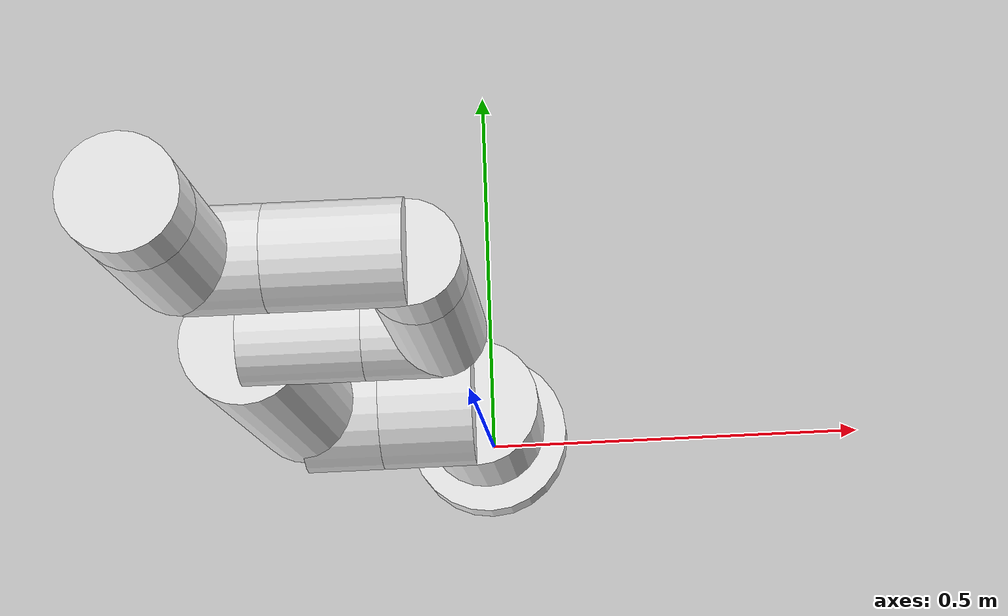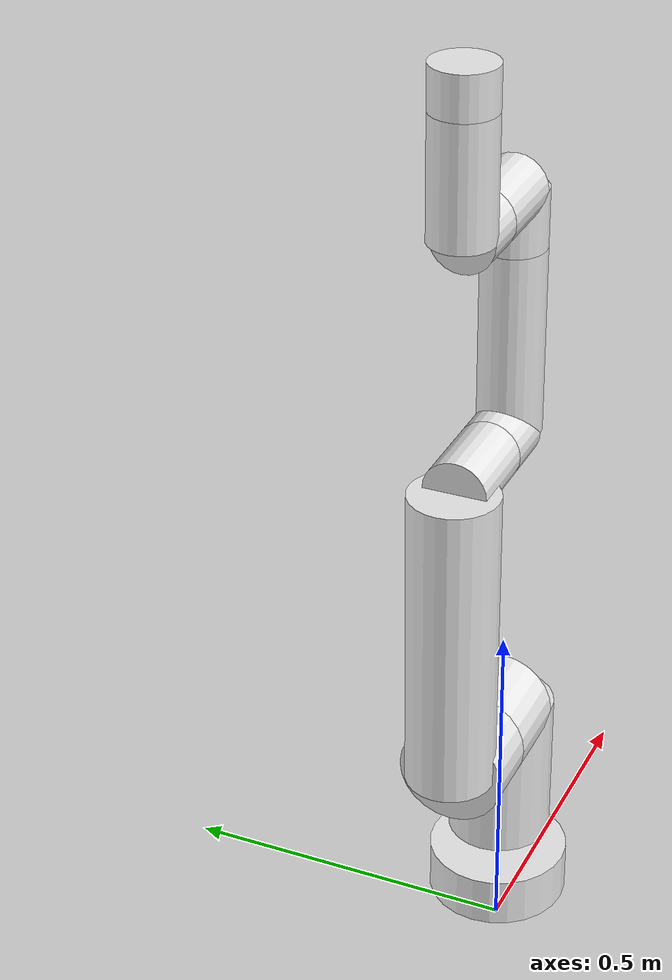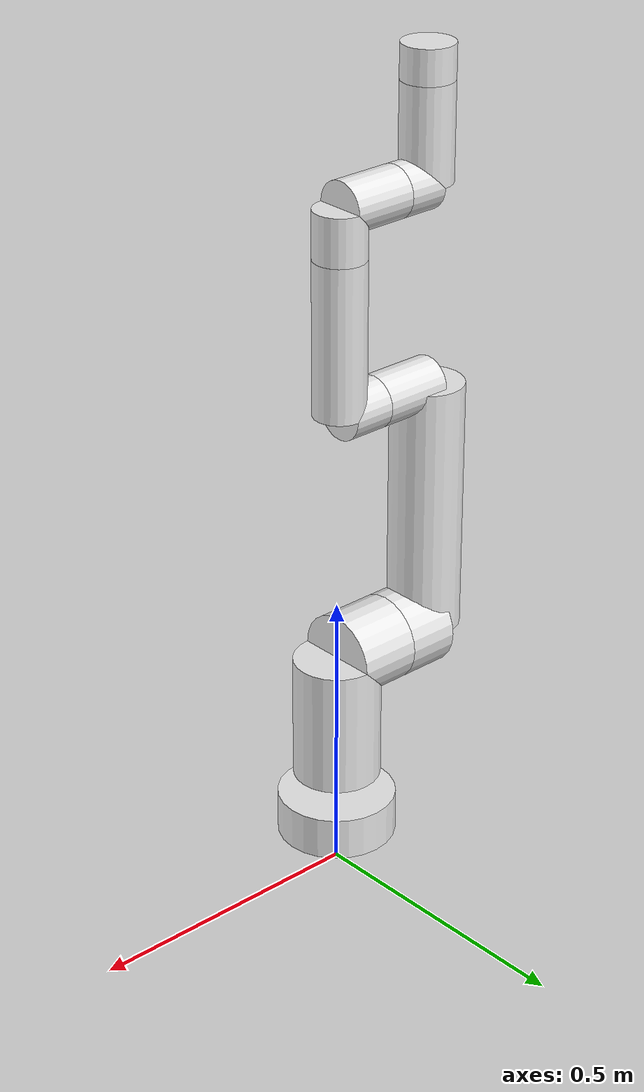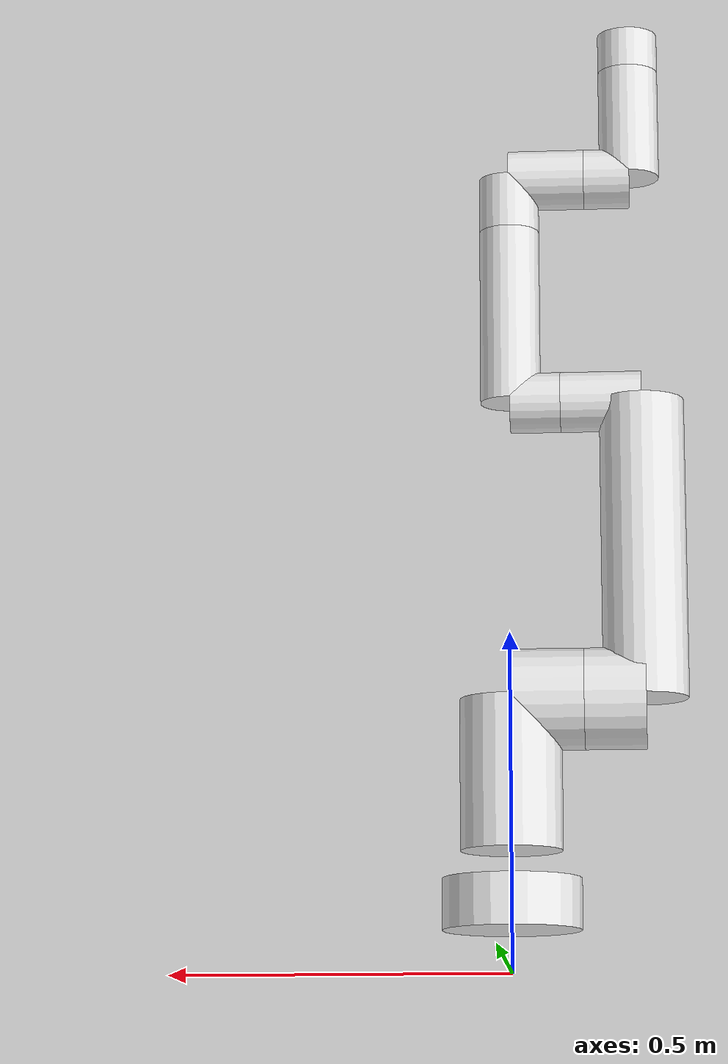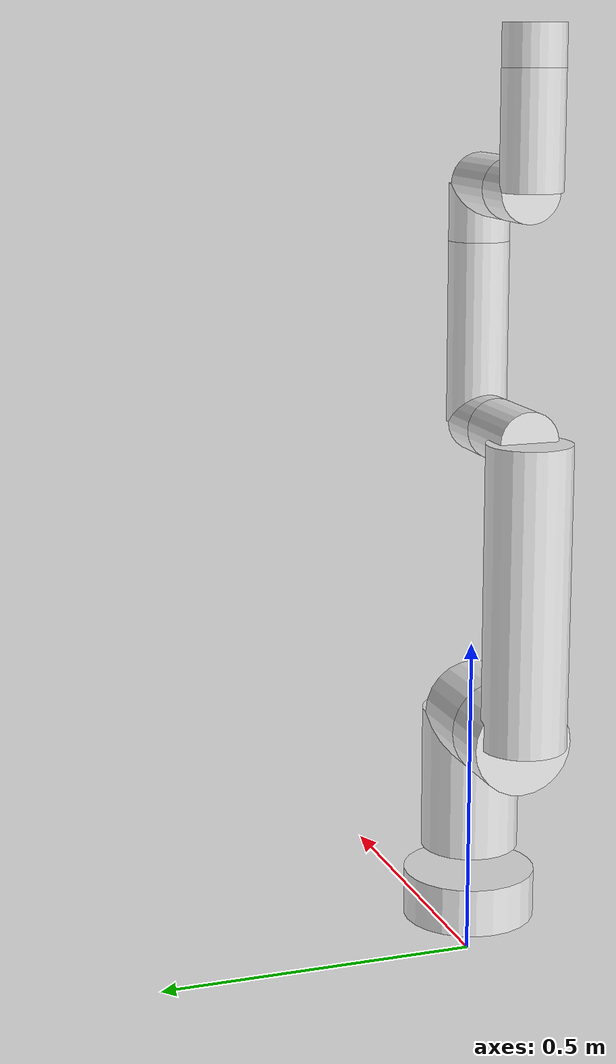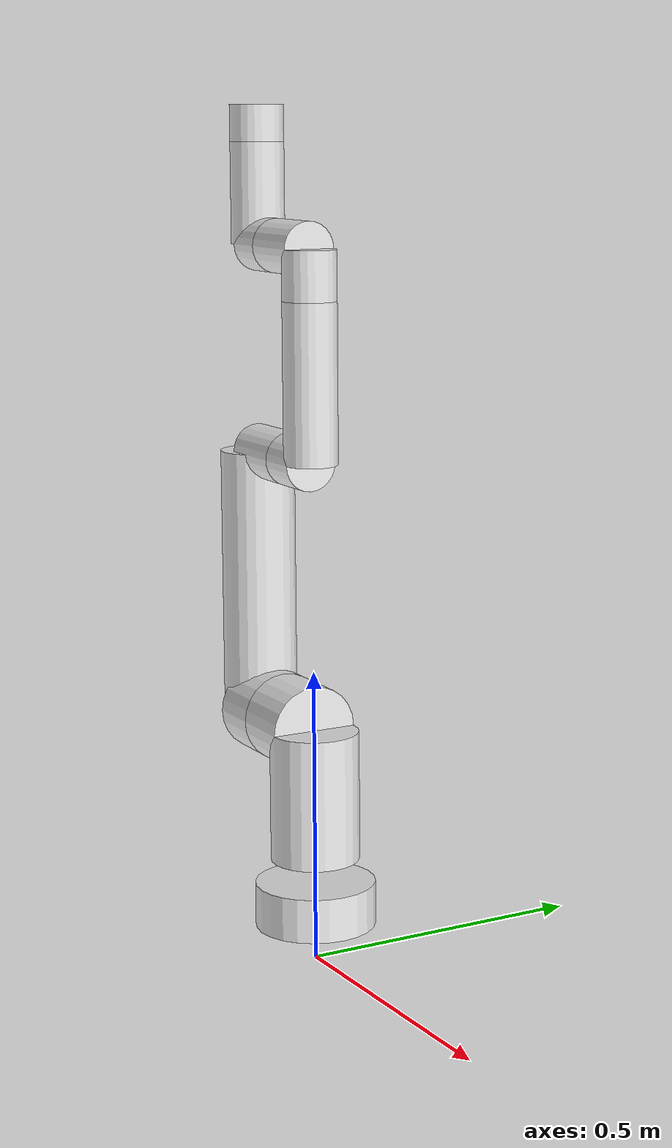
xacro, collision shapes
<?xml version="1.0" ?>
<robot name="indy7" xmlns:xacro="http://ros.org/wiki/xacro">
  	<xacro:include filename="$(find indy7_description)/urdf/indy7.xacro"/>
	<xacro:indy7_transmission hw_interface="hardware_interface/VelocityJointInterface" />

	<link name="world"/>
    <joint name="global" type="fixed">
		<parent link="world"/>
		<child link="link0"/>
		<origin xyz="0 0 0.1" rpy="0 0 -1.57"/>
	</joint>
</robot>

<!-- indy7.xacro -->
<robot name="indy7" xmlns:xacro="http://ros.org/wiki/xacro">
	<xacro:include filename="$(find indy7_description)/urdf/materials.xacro"/>
	<xacro:include filename="$(find indy7_description)/urdf/indy7.gazebo"/>

	<xacro:property name="PI" value="3.1415926535897931"/>
	<xacro:property name="indy_material" value="white"/>

	<link name="link0">
		<visual>
			<origin xyz="0 0 0" rpy="0 0 0"/>
			<geometry>
				<mesh filename="package://indy7_description/meshes/stl/Indy7_0.stl"/>
			</geometry>
			<material name="${indy_material}"/>
		</visual>
		<collision>
			<origin xyz="0 0 0" rpy="0 0 0"/>
			<geometry>
				<cylinder length="0.075" radius="0.102"/>
			</geometry>
		</collision>
		<inertial>
			<origin xyz="0 0 0" rpy="0 0 0"/>
			<mass value="1.59306955"/>
			<inertia ixx="+0.00572623" iyy="+0.00558959" izz="+0.00966674" ixy="+0.00000251" iyz="-0.00000014" ixz="-0.00011380"/>
		</inertial>
	</link>

	<link name="link1">
		<visual>
			<origin xyz="0 0 0" rpy="0 0 0"/>
			<geometry>
				<mesh filename="package://indy7_description/meshes/stl/Indy7_1.stl"/>
			</geometry>
			<material name="${indy_material}"/>
		</visual>
		<collision>
			<origin xyz="0 0 0.111" rpy="0 0 0"/>
			<geometry>
				<cylinder length="0.222" radius="0.075"/>
			</geometry>
		</collision>
		<collision>
			<origin xyz="0 -0.0545 0.222" rpy="${PI/2} 0 0"/>
			<geometry>
				<cylinder length="0.109" radius="0.075"/>
			</geometry>
		</collision>
		<inertial>
			<origin xyz="0 0 0" rpy="0 0 0"/>
			<mass value="11.8030102"/>
			<inertia ixx="+0.15418559" iyy="+0.12937017" izz="+0.05964415" ixy="-0.00000235" iyz="-0.04854267" ixz="+0.00001739"/>
		</inertial>
	</link>

	<link name="link2">
		<visual>
			<origin xyz="0 0 0" rpy="0 0 0"/>
			<geometry>
				<mesh filename="package://indy7_description/meshes/stl/Indy7_2.stl"/>
			</geometry>
			<material name="${indy_material}"/>
		</visual>
		<collision>
			<origin xyz="-0.225 0 0.09" rpy="${PI/2} 0 -${PI/2}"/>
			<geometry>
				<cylinder length="0.450" radius="0.063"/>
			</geometry>
		</collision>
		<collision>
			<origin xyz="0 0 0.045" rpy="0 0 0"/>
			<geometry>
				<cylinder length="0.09" radius="0.075"/>
			</geometry>
		</collision>
		<collision>
			<origin xyz="-0.45 0 0.02975 " rpy="0 0 0"/>
			<geometry>
				<cylinder length="0.1205" radius="0.045"/>
			</geometry>
		</collision>
		<inertial>
			<origin xyz="0 0 0" rpy="0 0 0"/>
			<mass value="7.99292141"/>
			<inertia ixx="+0.29356980" iyy="+0.28094142" izz="+0.03620609" ixy="-0.00000040" iyz="+0.03727972" ixz="+0.00001441"/>
		</inertial>
	</link>

	<link name="link3">
		<visual>
			<origin xyz="0 0 0" rpy="0 0 0"/>
			<geometry>
				<mesh filename="package://indy7_description/meshes/stl/Indy7_3.stl"/>
			</geometry>
			<material name="${indy_material}"/>
		</visual>
		<collision>
			<origin xyz="-0.1335 0 -0.075" rpy="${PI/2} 0 -${PI/2}"/>
			<geometry>
				<cylinder length="0.267" radius="0.045"/>
			</geometry>
		</collision>
		<collision>
			<origin xyz="0 0 -0.0375" rpy="0 0 0"/>
			<geometry>
				<cylinder length="0.075" radius="0.045"/>
			</geometry>
		</collision>
		<inertial>
			<origin xyz="0 0 0" rpy="0 0 0"/>
			<mass value="2.99134127"/>
			<inertia ixx="+0.03424593" iyy="+0.03406024" izz="+0.00450477" ixy="+0.00000149" iyz="+0.00186009" ixz="+0.00000724"/>
		</inertial>
	</link>

	<link name="link4">
		<visual>
			<origin xyz="0 0 0" rpy="0 0 0"/>
			<geometry>
				<mesh filename="package://indy7_description/meshes/stl/Indy7_4.stl"/>
			</geometry>
			<material name="${indy_material}"/>
		</visual>
		<collision>
			<origin xyz="0 -0.057 0.083" rpy="${PI/2} 0 0"/>
			<geometry>
				<cylinder length="0.114" radius="0.045"/>
			</geometry>
		</collision>
		<collision>
			<origin xyz="0 -0.057 0.083" rpy="${PI/2} 0 0"/>
			<geometry>
				<cylinder length="0.114" radius="0.045"/>
			</geometry>
		</collision>
		<collision>
			<origin xyz="0 0 0.0415" rpy="0 0 0"/>
			<geometry>
				<cylinder length="0.083" radius="0.045"/>
			</geometry>
		</collision>
		<inertial>
			<origin xyz="0 0 0" rpy="0 0 0"/>
			<mass value="2.12317035"/>
			<inertia ixx="+0.00670405" iyy="+0.00279246" izz="+0.00619341" ixy="+0.00000375" iyz="-0.00127967" ixz="+0.00000150"/>
		</inertial>
	</link>

	<link name="link5">
		<visual>
			<origin xyz="0 0 0" rpy="0 0 0"/>
			<geometry>
				<mesh filename="package://indy7_description/meshes/stl/Indy7_5.stl"/>
			</geometry>
			<material name="${indy_material}"/>
		</visual>
		<collision>
			<origin xyz="-0.084 0 0.069" rpy="${PI/2} 0 -${PI/2}"/>
			<geometry>
				<cylinder length="0.168" radius="0.045"/>
			</geometry>
		</collision>
		<collision>
			<origin xyz="-0 0 0.0345" rpy="0 0 0"/>
			<geometry>
				<cylinder length="0.069" radius="0.045"/>
			</geometry>
		</collision>
		<inertial>
			<origin xyz="0 0 0" rpy="0 0 0"/>
			<mass value="2.28865091"/>
			<inertia ixx="+0.00994891" iyy="+0.00978189" izz="+0.00271492" ixy="+0.00000014" iyz="-0.00093546" ixz="+0.00000321"/>
		</inertial>
	</link>

	<link name="link6">
		<visual>
			<origin xyz="0 0 0" rpy="0 0 0"/>
			<geometry>
				<mesh filename="package://indy7_description/meshes/stl/Indy7_6.stl"/>
			</geometry>
			<material name="${indy_material}"/>
		</visual>
		<collision>
			<origin xyz="0 0 0.03" rpy="0 0 0"/>
			<geometry>
				<cylinder length="0.06" radius="0.045"/>
			</geometry>
		</collision>
		<inertial>
			<origin xyz="0 0 0" rpy="0 0 0"/>
			<mass value="0.40083918"/>
			<inertia ixx="0.00043534" iyy="0.00044549" izz="0.00059634" ixy="+0.00000013" iyz="+0.00000051" ixz="-0.00000002"/>
		</inertial>
	</link>
	<link name="tcp"/>

	<joint name="joint0" type="revolute">
		<parent link="link0"/>
		<child link="link1"/>
		<origin xyz="0 0 0.0775" rpy="0 0 0"/>
		<axis xyz="0 0 1"/>
		<limit effort="300" velocity="5" lower="-${175*PI/180}" upper="${175*PI/180}"/>
		<dynamics damping="0.0" friction="0.0"/>
	</joint>

	<joint name="joint1" type="revolute">
		<parent link="link1"/>
		<child link="link2"/>
		<origin xyz="0 -0.10900000 0.22200000" rpy="${PI/2} ${PI/2} 0"/>
		<axis xyz="0 0 1"/>
		<limit effort="100" velocity="3" lower="-${175*PI/180}" upper="${175*PI/180}"/>
		<dynamics damping="0.0" friction="0.0"/>
	</joint>

	<joint name="joint2" type="revolute">
		<parent link="link2"/>
		<child link="link3"/>
		<origin xyz="-0.45000000 +0.00000000 -0.03050000" rpy="0 0 0"/>
		<axis xyz="0 0 1"/>
		<limit effort="100" velocity="3" lower="-${175*PI/180}" upper="${175*PI/180}"/>
		<dynamics damping="0.0" friction="0.0"/>
	</joint>

	<joint name="joint3" type="revolute">
		<parent link="link3"/>
		<child link="link4"/>
		<origin xyz="-0.26700000 +0.00000000 -0.07500000" rpy="-${PI/2} 0 ${PI/2}"/>
		<axis xyz="0 0 1"/>
		<limit effort="100" velocity="3" lower="-${175*PI/180}" upper="${175*PI/180}"/>
		<dynamics damping="0.0" friction="0.0"/>
	</joint>

	<joint name="joint4" type="revolute">
		<parent link="link4"/>
		<child link="link5"/>
		<origin xyz="+0.00000000 -0.11400000 +0.08300000" rpy="${PI/2} ${PI/2} 0"/>
		<axis xyz="0 0 1"/>
		<limit effort="100" velocity="3" lower="-${175*PI/180}" upper="${175*PI/180}"/>
		<dynamics damping="0.0" friction="0.0"/>
	</joint>

	<joint name="joint5" type="revolute">
		<parent link="link5"/>
		<child link="link6"/>
		<origin xyz="-0.16800000 +0.00000000 +0.06900000" rpy="-${PI/2} 0 ${PI/2}"/>
		<axis xyz="0 0 1"/>
		<limit effort="100" velocity="3" lower="-${215*PI/180}" upper="${215*PI/180}"/>
		<dynamics damping="0.0" friction="0.0"/>
	</joint>

	<joint name="tcp" type="fixed">
		<parent link="link6"/>
		<child link="tcp"/>
		<origin xyz="0 0 0.06" rpy="0 0 0"/>
	</joint>

	<xacro:macro name="indy7_transmission" params="hw_interface">
		<transmission name="tran0">
			<type>transmission_interface/SimpleTransmission</type>
			<joint name="joint0">
				<hardwareInterface>${hw_interface}</hardwareInterface>
			</joint>
			<actuator name="motor0">
				<hardwareInterface>${hw_interface}</hardwareInterface>
				<mechanicalReduction>1</mechanicalReduction>
			</actuator>
		</transmission>

		<transmission name="tran1">
			<type>transmission_interface/SimpleTransmission</type>
			<joint name="joint1">
				<hardwareInterface>${hw_interface}</hardwareInterface>
			</joint>
			<actuator name="motor1">
				<hardwareInterface>${hw_interface}</hardwareInterface>
				<mechanicalReduction>1</mechanicalReduction>
			</actuator>
		</transmission>

		<transmission name="tran2">
			<type>transmission_interface/SimpleTransmission</type>
			<joint name="joint2">
				<hardwareInterface>${hw_interface}</hardwareInterface>
			</joint>
			<actuator name="motor2">
				<hardwareInterface>${hw_interface}</hardwareInterface>
				<mechanicalReduction>1</mechanicalReduction>
			</actuator>
		</transmission>

		<transmission name="tran3">
			<type>transmission_interface/SimpleTransmission</type>
			<joint name="joint3">
				<hardwareInterface>${hw_interface}</hardwareInterface>
			</joint>
			<actuator name="motor3">
				<hardwareInterface>${hw_interface}</hardwareInterface>
				<mechanicalReduction>1</mechanicalReduction>
			</actuator>
		</transmission>

		<transmission name="tran4">
			<type>transmission_interface/SimpleTransmission</type>
			<joint name="joint4">
				<hardwareInterface>${hw_interface}</hardwareInterface>
			</joint>
			<actuator name="motor4">
				<hardwareInterface>${hw_interface}</hardwareInterface>
				<mechanicalReduction>1</mechanicalReduction>
			</actuator>
		</transmission>

		<transmission name="tran5">
			<type>transmission_interface/SimpleTransmission</type>
			<joint name="joint5">
				<hardwareInterface>${hw_interface}</hardwareInterface>
			</joint>
			<actuator name="motor5">
				<hardwareInterface>${hw_interface}</hardwareInterface>
				<mechanicalReduction>1</mechanicalReduction>
			</actuator>
		</transmission>
	</xacro:macro>

</robot>
